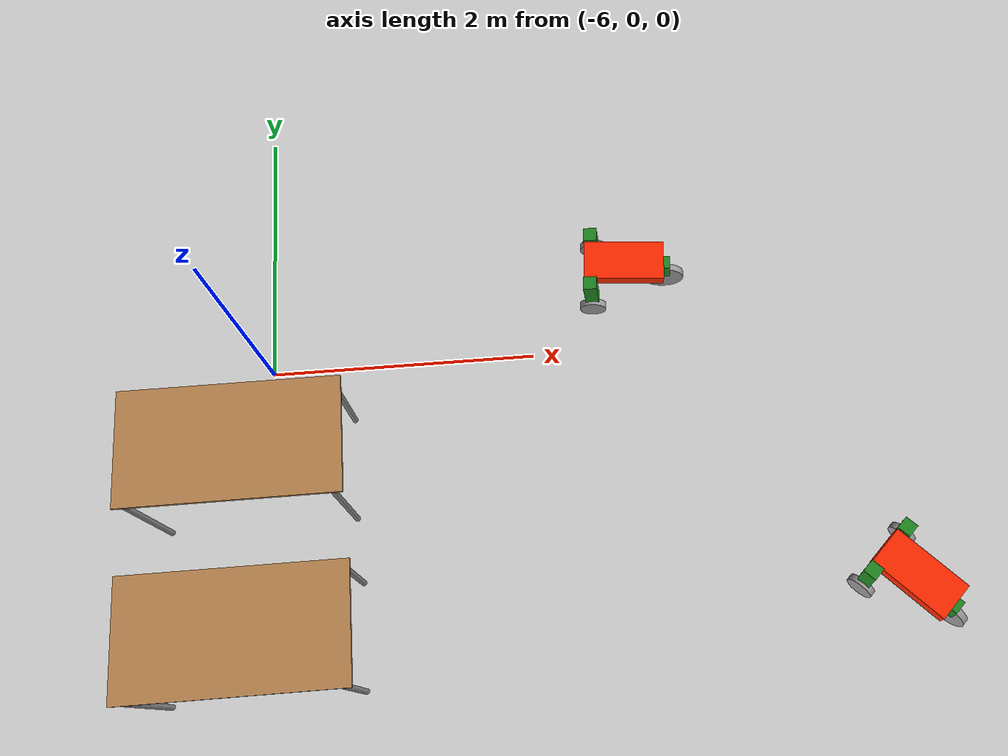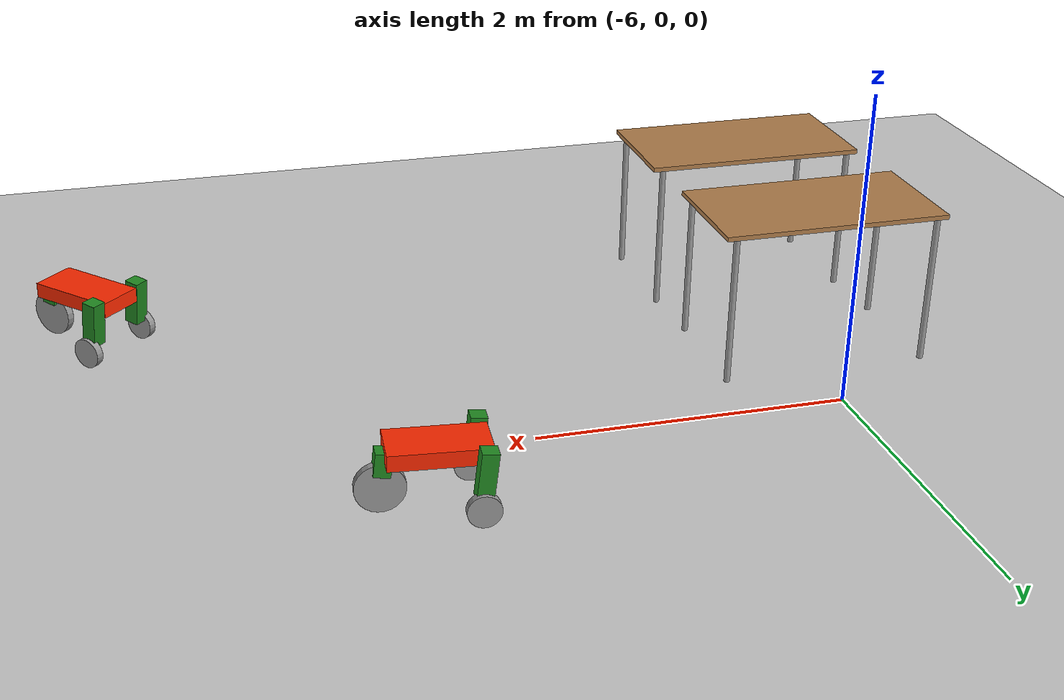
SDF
<sdf version="1.7">
 <world name="default">
  <model name="ground_plane">
   <static>1</static>
   <link name="link">
    <collision name="collision">
     <geometry><plane><normal>0 0 1</normal><size>100 100</size></plane></geometry>
     <surface>
      <contact><collide_bitmask>65535</collide_bitmask></contact>
      <friction><ode><mu>100</mu><mu2>50</mu2></ode></friction>
     </surface>
    </collision>
    <visual name="visual">
     <cast_shadows>0</cast_shadows>
     <geometry><plane><normal>0 0 1</normal><size>100 100</size></plane></geometry>
     <material>
      <script><uri>file://media/materials/scripts/gazebo.material</uri><name>Gazebo/Grey</name></script>
     </material>
    </visual>
   </link>
  </model>
  <model name="Three-Wheels-Robot_0">
   <link name="link_0">
    <inertial>
     <mass>1</mass>
     <inertia>
      <ixx>0.166667</ixx>
      <ixy>0</ixy>
      <ixz>0</ixz>
      <iyy>0.166667</iyy>
      <iyz>0</iyz>
      <izz>0.166667</izz>
     </inertia>
    </inertial>
    <pose>0.05 0 0.195 0 -0 0</pose>
    <visual name="visual">
     <pose>0 0 0 0 0.1 0</pose>
     <geometry><box><size>0.6 0.3 0.1</size></box></geometry>
     <material>
      <lighting>1</lighting>
      <script><uri>file://media/materials/scripts/gazebo.material</uri><name>Gazebo/Grey</name></script>
      <shader type="pixel"><normal_map>__default__</normal_map></shader>
      <ambient>1 0.16 0 1</ambient>
      <diffuse>0.7 0.7 0.7 1</diffuse>
      <specular>0.01 0.01 0.01 1</specular>
      <emissive>0 0 0 1</emissive>
     </material>
    </visual>
    <visual name="ModelPreview_0::link_0::visual_2">
     <pose>-0.25 -0.2 -0.05 0 -0 0</pose>
     <geometry><box><size>0.1 0.1 0.3</size></box></geometry>
     <material>
      <lighting>1</lighting>
      <script><uri>file://media/materials/scripts/gazebo.material</uri><name>Gazebo/Grey</name></script>
      <shader type="pixel"><normal_map>__default__</normal_map></shader>
      <ambient>0.13 0.54 0.13 1</ambient>
      <diffuse>0.7 0.7 0.7 1</diffuse>
      <specular>0.01 0.01 0.01 1</specular>
      <emissive>0 0 0 1</emissive>
     </material>
    </visual>
    <visual name="ModelPreview_0::link_0::visual_3">
     <pose>0.3 0 -0.1 0 -0 0</pose>
     <geometry><box><size>0.1 0.1 0.15</size></box></geometry>
     <material>
      <lighting>1</lighting>
      <script><uri>file://media/materials/scripts/gazebo.material</uri><name>Gazebo/Grey</name></script>
      <shader type="pixel"><normal_map>__default__</normal_map></shader>
      <ambient>0.13 0.54 0.13 1</ambient>
      <diffuse>0.7 0.7 0.7 1</diffuse>
      <specular>0.01 0.01 0.01 1</specular>
      <emissive>0 0 0 1</emissive>
     </material>
    </visual>
    <visual name="ModelPreview_0::link_0::visual_1">
     <pose>-0.25 0.2 -0.05 0 -0 0</pose>
     <geometry><box><size>0.1 0.1 0.3</size></box></geometry>
     <material>
      <lighting>1</lighting>
      <script><uri>file://media/materials/scripts/gazebo.material</uri><name>Gazebo/Grey</name></script>
      <shader type="pixel"><normal_map>__default__</normal_map></shader>
      <ambient>0.13 0.54 0.13 1</ambient>
      <diffuse>0.7 0.7 0.7 1</diffuse>
      <specular>0.01 0.01 0.01 1</specular>
      <emissive>0 0 0 1</emissive>
     </material>
    </visual>
    <collision name="collision">
     <pose>0 0 -0.1 0 -0 0</pose>
     <geometry><box><size>0.65 0.6 0.35</size></box></geometry>
     <surface>
      <friction>
       <ode><mu>1</mu><mu2>1</mu2><fdir1>0 0 0</fdir1><slip1>0</slip1><slip2>0</slip2></ode>
       <torsional>
        <coefficient>1</coefficient>
        <patch_radius>0</patch_radius>
        <surface_radius>0</surface_radius>
        <use_patch_radius>1</use_patch_radius>
        <ode><slip>0</slip></ode>
       </torsional>
      </friction>
      <bounce><restitution_coefficient>0</restitution_coefficient><threshold>1e+06</threshold></bounce>
      <contact>
       <collide_without_contact>0</collide_without_contact>
       <collide_without_contact_bitmask>1</collide_without_contact_bitmask>
       <collide_bitmask>1</collide_bitmask>
       <ode>
        <soft_cfm>0</soft_cfm>
        <soft_erp>0.2</soft_erp>
        <kp>1e+13</kp>
        <kd>1</kd>
        <max_vel>0.01</max_vel>
        <min_depth>0</min_depth>
       </ode>
       <bullet>
        <split_impulse>1</split_impulse>
        <split_impulse_penetration_threshold>-0.01</split_impulse_penetration_threshold>
        <soft_cfm>0</soft_cfm>
        <soft_erp>0.2</soft_erp>
        <kp>1e+13</kp>
        <kd>1</kd>
       </bullet>
      </contact>
     </surface>
    </collision>
   </link>
   <link name="link_2">
    <inertial>
     <mass>1</mass>
     <inertia><ixx>0.145833</ixx><ixy>0</ixy><ixz>0</ixz><iyy>0.145833</iyy><iyz>0</iyz><izz>0.125</izz></inertia>
    </inertial>
    <pose>-0.2 -0.25 -0.055 0 -0 0</pose>
    <visual name="visual">
     <pose>0 0 0 1.5707 -0 0</pose>
     <geometry><cylinder><radius>0.1</radius><length>0.05</length></cylinder></geometry>
     <material>
      <lighting>1</lighting>
      <script><uri>file://media/materials/scripts/gazebo.material</uri><name>Gazebo/Grey</name></script>
      <shader type="pixel"><normal_map>__default__</normal_map></shader>
      <ambient>0.3 0.3 0.3 1</ambient>
      <diffuse>0.7 0.7 0.7 1</diffuse>
      <specular>0.01 0.01 0.01 1</specular>
      <emissive>0 0 0 1</emissive>
     </material>
    </visual>
    <collision name="collision">
     <pose>0 0 0 1.5707 -0 0</pose>
     <geometry><cylinder><radius>0.1</radius><length>0.05</length></cylinder></geometry>
     <surface>
      <friction>
       <ode><mu>1</mu><mu2>1</mu2><fdir1>0 0 0</fdir1><slip1>0</slip1><slip2>0</slip2></ode>
       <torsional>
        <coefficient>1</coefficient>
        <patch_radius>0</patch_radius>
        <surface_radius>0</surface_radius>
        <use_patch_radius>1</use_patch_radius>
        <ode><slip>0</slip></ode>
       </torsional>
      </friction>
      <bounce><restitution_coefficient>0</restitution_coefficient><threshold>1e+06</threshold></bounce>
      <contact>
       <collide_without_contact>0</collide_without_contact>
       <collide_without_contact_bitmask>1</collide_without_contact_bitmask>
       <collide_bitmask>1</collide_bitmask>
       <ode>
        <soft_cfm>0</soft_cfm>
        <soft_erp>0.2</soft_erp>
        <kp>1e+13</kp>
        <kd>1</kd>
        <max_vel>0.01</max_vel>
        <min_depth>0</min_depth>
       </ode>
       <bullet>
        <split_impulse>1</split_impulse>
        <split_impulse_penetration_threshold>-0.01</split_impulse_penetration_threshold>
        <soft_cfm>0</soft_cfm>
        <soft_erp>0.2</soft_erp>
        <kp>1e+13</kp>
        <kd>1</kd>
       </bullet>
      </contact>
     </surface>
    </collision>
   </link>
   <link name="link_2_clone">
    <inertial>
     <mass>1</mass>
     <inertia><ixx>0.145833</ixx><ixy>0</ixy><ixz>0</ixz><iyy>0.145833</iyy><iyz>0</iyz><izz>0.125</izz></inertia>
    </inertial>
    <pose>-0.2 0.25 -0.055 0 -0 0</pose>
    <visual name="visual">
     <pose>0 0 0 1.5707 -0 0</pose>
     <geometry><cylinder><radius>0.1</radius><length>0.05</length></cylinder></geometry>
     <material>
      <lighting>1</lighting>
      <script><uri>file://media/materials/scripts/gazebo.material</uri><name>Gazebo/Grey</name></script>
      <shader type="pixel"><normal_map>__default__</normal_map></shader>
      <ambient>0.3 0.3 0.3 1</ambient>
      <diffuse>0.7 0.7 0.7 1</diffuse>
      <specular>0.01 0.01 0.01 1</specular>
      <emissive>0 0 0 1</emissive>
     </material>
    </visual>
    <collision name="collision">
     <pose>0 0 0 1.5707 -0 0</pose>
     <geometry><cylinder><radius>0.1</radius><length>0.05</length></cylinder></geometry>
     <surface>
      <friction>
       <ode><mu>1</mu><mu2>1</mu2><fdir1>0 0 0</fdir1><slip1>0</slip1><slip2>0</slip2></ode>
       <torsional>
        <coefficient>1</coefficient>
        <patch_radius>0</patch_radius>
        <surface_radius>0</surface_radius>
        <use_patch_radius>1</use_patch_radius>
        <ode><slip>0</slip></ode>
       </torsional>
      </friction>
      <bounce><restitution_coefficient>0</restitution_coefficient><threshold>1e+06</threshold></bounce>
      <contact>
       <collide_without_contact>0</collide_without_contact>
       <collide_without_contact_bitmask>1</collide_without_contact_bitmask>
       <collide_bitmask>1</collide_bitmask>
       <ode>
        <soft_cfm>0</soft_cfm>
        <soft_erp>0.2</soft_erp>
        <kp>1e+13</kp>
        <kd>1</kd>
        <max_vel>0.01</max_vel>
        <min_depth>0</min_depth>
       </ode>
       <bullet>
        <split_impulse>1</split_impulse>
        <split_impulse_penetration_threshold>-0.01</split_impulse_penetration_threshold>
        <soft_cfm>0</soft_cfm>
        <soft_erp>0.2</soft_erp>
        <kp>1e+13</kp>
        <kd>1</kd>
       </bullet>
      </contact>
     </surface>
    </collision>
   </link>
   <link name="link_2_clone_0">
    <inertial>
     <mass>1</mass>
     <inertia><ixx>0.145833</ixx><ixy>0</ixy><ixz>0</ixz><iyy>0.145833</iyy><iyz>0</iyz><izz>0.125</izz></inertia>
    </inertial>
    <pose>0.35 -0 -0.085 0 -0 0</pose>
    <visual name="visual">
     <pose>0 0 0.02 1.5707 -0 0</pose>
     <geometry><cylinder><radius>0.15</radius><length>0.05</length></cylinder></geometry>
     <material>
      <lighting>1</lighting>
      <script><uri>file://media/materials/scripts/gazebo.material</uri><name>Gazebo/Grey</name></script>
      <shader type="pixel"><normal_map>__default__</normal_map></shader>
      <ambient>0.3 0.3 0.3 1</ambient>
      <diffuse>0.7 0.7 0.7 1</diffuse>
      <specular>0.01 0.01 0.01 1</specular>
      <emissive>0 0 0 1</emissive>
     </material>
    </visual>
    <collision name="collision">
     <pose>0 0 0.02 1.5707 -0 0</pose>
     <geometry><cylinder><radius>0.15</radius><length>0.05</length></cylinder></geometry>
     <surface>
      <friction>
       <ode><mu>1</mu><mu2>1</mu2><fdir1>0 0 0</fdir1><slip1>0</slip1><slip2>0</slip2></ode>
       <torsional>
        <coefficient>1</coefficient>
        <patch_radius>0</patch_radius>
        <surface_radius>0</surface_radius>
        <use_patch_radius>1</use_patch_radius>
        <ode><slip>0</slip></ode>
       </torsional>
      </friction>
      <bounce><restitution_coefficient>0</restitution_coefficient><threshold>1e+06</threshold></bounce>
      <contact>
       <collide_without_contact>0</collide_without_contact>
       <collide_without_contact_bitmask>1</collide_without_contact_bitmask>
       <collide_bitmask>1</collide_bitmask>
       <ode>
        <soft_cfm>0</soft_cfm>
        <soft_erp>0.2</soft_erp>
        <kp>1e+13</kp>
        <kd>1</kd>
        <max_vel>0.01</max_vel>
        <min_depth>0</min_depth>
       </ode>
       <bullet>
        <split_impulse>1</split_impulse>
        <split_impulse_penetration_threshold>-0.01</split_impulse_penetration_threshold>
        <soft_cfm>0</soft_cfm>
        <soft_erp>0.2</soft_erp>
        <kp>1e+13</kp>
        <kd>1</kd>
       </bullet>
      </contact>
     </surface>
    </collision>
   </link>
   <joint name="link_0_JOINT_0" type="revolute">
    <parent>link_0</parent>
    <child>link_2</child>
    <axis>
     <xyz>0 1 0</xyz>
     <limit>
      <lower>-1.79769e+308</lower>
      <upper>1.79769e+308</upper>
      <effort>-1</effort>
      <velocity>-1</velocity>
     </limit>
     <dynamics>
      <spring_reference>0</spring_reference>
      <spring_stiffness>0</spring_stiffness>
      <damping>0</damping>
      <friction>0</friction>
     </dynamics>
    </axis>
    <physics>
     <ode><limit><cfm>0</cfm><erp>0.2</erp></limit><suspension><cfm>0</cfm><erp>0.2</erp></suspension></ode>
    </physics>
   </joint>
   <joint name="link_0_JOINT_1" type="revolute">
    <parent>link_0</parent>
    <child>link_2_clone</child>
    <axis>
     <xyz>0 -1 0</xyz>
     <limit>
      <lower>-1.79769e+308</lower>
      <upper>1.79769e+308</upper>
      <effort>-1</effort>
      <velocity>-1</velocity>
     </limit>
     <dynamics>
      <spring_reference>0</spring_reference>
      <spring_stiffness>0</spring_stiffness>
      <damping>0</damping>
      <friction>0</friction>
     </dynamics>
    </axis>
    <physics>
     <ode><limit><cfm>0</cfm><erp>0.2</erp></limit><suspension><cfm>0</cfm><erp>0.2</erp></suspension></ode>
    </physics>
   </joint>
   <joint name="link_0_JOINT_2" type="revolute">
    <parent>link_0</parent>
    <child>link_2_clone_0</child>
    <axis>
     <xyz>0 1 0</xyz>
     <limit>
      <lower>-1.79769e+308</lower>
      <upper>1.79769e+308</upper>
      <effort>-1</effort>
      <velocity>-1</velocity>
     </limit>
     <dynamics>
      <spring_reference>0</spring_reference>
      <spring_stiffness>0</spring_stiffness>
      <damping>0</damping>
      <friction>0</friction>
     </dynamics>
    </axis>
    <physics>
     <ode><limit><cfm>0</cfm><erp>0.2</erp></limit><suspension><cfm>0</cfm><erp>0.2</erp></suspension></ode>
    </physics>
   </joint>
   <static>0</static>
   <pose>-3.29506 0.570136 0.176429 5e-06 -0.108986 -0.085797</pose>
  </model>
  <model name="table">
   <static>1</static>
   <link name="link">
    <collision name="surface">
     <pose>0 0 1 0 -0 0</pose>
     <geometry><box><size>1.5 0.8 0.03</size></box></geometry>
     <surface><friction><ode><mu>0.6</mu><mu2>0.6</mu2></ode></friction></surface>
    </collision>
    <visual name="visual1">
     <pose>0 0 1 0 -0 0</pose>
     <geometry><box><size>1.5 0.8 0.03</size></box></geometry>
     <material>
      <script><uri>file://media/materials/scripts/gazebo.material</uri><name>Gazebo/Wood</name></script>
     </material>
    </visual>
    <collision name="coll_front_left_leg1">
     <pose>0.68 0.38 0.5 0 -0 0</pose>
     <geometry><cylinder><radius>0.02</radius><length>1</length></cylinder></geometry>
    </collision>
    <visual name="front_left_leg1">
     <pose>0.68 0.38 0.5 0 -0 0</pose>
     <geometry><cylinder><radius>0.02</radius><length>1</length></cylinder></geometry>
     <material>
      <script><uri>file://media/materials/scripts/gazebo.material</uri><name>Gazebo/Grey</name></script>
     </material>
    </visual>
    <collision name="coll_front_right_leg1">
     <pose>0.68 -0.38 0.5 0 -0 0</pose>
     <geometry><cylinder><radius>0.02</radius><length>1</length></cylinder></geometry>
    </collision>
    <visual name="front_right_leg1">
     <pose>0.68 -0.38 0.5 0 -0 0</pose>
     <geometry><cylinder><radius>0.02</radius><length>1</length></cylinder></geometry>
     <material>
      <script><uri>file://media/materials/scripts/gazebo.material</uri><name>Gazebo/Grey</name></script>
     </material>
    </visual>
    <collision name="coll_back_right_leg1">
     <pose>-0.68 -0.38 0.5 0 -0 0</pose>
     <geometry><cylinder><radius>0.02</radius><length>1</length></cylinder></geometry>
    </collision>
    <visual name="back_right_leg1">
     <pose>-0.68 -0.38 0.5 0 -0 0</pose>
     <geometry><cylinder><radius>0.02</radius><length>1</length></cylinder></geometry>
     <material>
      <script><uri>file://media/materials/scripts/gazebo.material</uri><name>Gazebo/Grey</name></script>
     </material>
    </visual>
    <collision name="coll_back_left_leg1">
     <pose>-0.68 0.38 0.5 0 -0 0</pose>
     <geometry><cylinder><radius>0.02</radius><length>1</length></cylinder></geometry>
    </collision>
    <visual name="back_left_leg1">
     <pose>-0.68 0.38 0.5 0 -0 0</pose>
     <geometry><cylinder><radius>0.02</radius><length>1</length></cylinder></geometry>
     <material>
      <script><uri>file://media/materials/scripts/gazebo.material</uri><name>Gazebo/Grey</name></script>
     </material>
    </visual>
   </link>
   <pose>-6.03425 -2.02721 0 0 -0 0</pose>
  </model>
  <model name="table_0">
   <static>1</static>
   <link name="link">
    <collision name="surface">
     <pose>0 0 1 0 -0 0</pose>
     <geometry><box><size>1.5 0.8 0.03</size></box></geometry>
     <surface><friction><ode><mu>0.6</mu><mu2>0.6</mu2></ode></friction></surface>
    </collision>
    <visual name="visual1">
     <pose>0 0 1 0 -0 0</pose>
     <geometry><box><size>1.5 0.8 0.03</size></box></geometry>
     <material>
      <script><uri>file://media/materials/scripts/gazebo.material</uri><name>Gazebo/Wood</name></script>
     </material>
    </visual>
    <collision name="coll_front_left_leg2">
     <pose>0.68 0.38 0.5 0 -0 0</pose>
     <geometry><cylinder><radius>0.02</radius><length>1</length></cylinder></geometry>
    </collision>
    <visual name="front_left_leg2">
     <pose>0.68 0.38 0.5 0 -0 0</pose>
     <geometry><cylinder><radius>0.02</radius><length>1</length></cylinder></geometry>
     <material>
      <script><uri>file://media/materials/scripts/gazebo.material</uri><name>Gazebo/Grey</name></script>
     </material>
    </visual>
    <collision name="coll_front_right_leg2">
     <pose>0.68 -0.38 0.5 0 -0 0</pose>
     <geometry><cylinder><radius>0.02</radius><length>1</length></cylinder></geometry>
    </collision>
    <visual name="front_right_leg2">
     <pose>0.68 -0.38 0.5 0 -0 0</pose>
     <geometry><cylinder><radius>0.02</radius><length>1</length></cylinder></geometry>
     <material>
      <script><uri>file://media/materials/scripts/gazebo.material</uri><name>Gazebo/Grey</name></script>
     </material>
    </visual>
    <collision name="coll_back_right_leg2">
     <pose>-0.68 -0.38 0.5 0 -0 0</pose>
     <geometry><cylinder><radius>0.02</radius><length>1</length></cylinder></geometry>
    </collision>
    <visual name="back_right_leg2">
     <pose>-0.68 -0.38 0.5 0 -0 0</pose>
     <geometry><cylinder><radius>0.02</radius><length>1</length></cylinder></geometry>
     <material>
      <script><uri>file://media/materials/scripts/gazebo.material</uri><name>Gazebo/Grey</name></script>
     </material>
    </visual>
    <collision name="coll_back_left_leg2">
     <pose>-0.68 0.38 0.5 0 -0 0</pose>
     <geometry><cylinder><radius>0.02</radius><length>1</length></cylinder></geometry>
    </collision>
    <visual name="back_left_leg2">
     <pose>-0.68 0.38 0.5 0 -0 0</pose>
     <geometry><cylinder><radius>0.02</radius><length>1</length></cylinder></geometry>
     <material>
      <script><uri>file://media/materials/scripts/gazebo.material</uri><name>Gazebo/Grey</name></script>
     </material>
    </visual>
   </link>
   <pose>-6.06932 -0.79014 0 0 -0 0</pose>
  </model>
  <model name="Three-Wheels-Robot_1">
   <link name="link_0">
    <inertial>
     <mass>1</mass>
     <inertia>
      <ixx>0.166667</ixx>
      <ixy>0</ixy>
      <ixz>0</ixz>
      <iyy>0.166667</iyy>
      <iyz>0</iyz>
      <izz>0.166667</izz>
     </inertia>
    </inertial>
    <pose>0.05 -0 0.195 0 -0 0</pose>
    <visual name="ModelPreview_0::link_0::visual_1">
     <pose>-0.25 0.2 -0.05 0 -0 0</pose>
     <geometry><box><size>0.1 0.1 0.3</size></box></geometry>
     <material>
      <lighting>1</lighting>
      <script><uri>file://media/materials/scripts/gazebo.material</uri><name>Gazebo/Grey</name></script>
      <shader type="pixel"><normal_map>__default__</normal_map></shader>
      <ambient>0.13 0.54 0.13 1</ambient>
      <diffuse>0.7 0.7 0.7 1</diffuse>
      <specular>0.01 0.01 0.01 1</specular>
      <emissive>0 0 0 1</emissive>
     </material>
    </visual>
    <visual name="ModelPreview_0::link_0::visual_3">
     <pose>0.3 0 -0.1 0 -0 0</pose>
     <geometry><box><size>0.1 0.1 0.15</size></box></geometry>
     <material>
      <lighting>1</lighting>
      <script><uri>file://media/materials/scripts/gazebo.material</uri><name>Gazebo/Grey</name></script>
      <shader type="pixel"><normal_map>__default__</normal_map></shader>
      <ambient>0.13 0.54 0.13 1</ambient>
      <diffuse>0.7 0.7 0.7 1</diffuse>
      <specular>0.01 0.01 0.01 1</specular>
      <emissive>0 0 0 1</emissive>
     </material>
    </visual>
    <visual name="visual">
     <pose>0 0 0 0 0.1 0</pose>
     <geometry><box><size>0.6 0.3 0.1</size></box></geometry>
     <material>
      <lighting>1</lighting>
      <script><uri>file://media/materials/scripts/gazebo.material</uri><name>Gazebo/Grey</name></script>
      <shader type="pixel"><normal_map>__default__</normal_map></shader>
      <ambient>1 0.16 0 1</ambient>
      <diffuse>0.7 0.7 0.7 1</diffuse>
      <specular>0.01 0.01 0.01 1</specular>
      <emissive>0 0 0 1</emissive>
     </material>
    </visual>
    <visual name="ModelPreview_0::link_0::visual_2">
     <pose>-0.25 -0.2 -0.05 0 -0 0</pose>
     <geometry><box><size>0.1 0.1 0.3</size></box></geometry>
     <material>
      <lighting>1</lighting>
      <script><uri>file://media/materials/scripts/gazebo.material</uri><name>Gazebo/Grey</name></script>
      <shader type="pixel"><normal_map>__default__</normal_map></shader>
      <ambient>0.13 0.54 0.13 1</ambient>
      <diffuse>0.7 0.7 0.7 1</diffuse>
      <specular>0.01 0.01 0.01 1</specular>
      <emissive>0 0 0 1</emissive>
     </material>
    </visual>
    <collision name="collision">
     <pose>0 0 -0.1 0 -0 0</pose>
     <geometry><box><size>0.65 0.6 0.35</size></box></geometry>
     <surface>
      <friction>
       <ode><mu>1</mu><mu2>1</mu2><fdir1>0 0 0</fdir1><slip1>0</slip1><slip2>0</slip2></ode>
       <torsional>
        <coefficient>1</coefficient>
        <patch_radius>0</patch_radius>
        <surface_radius>0</surface_radius>
        <use_patch_radius>1</use_patch_radius>
        <ode><slip>0</slip></ode>
       </torsional>
      </friction>
      <bounce><restitution_coefficient>0</restitution_coefficient><threshold>1e+06</threshold></bounce>
      <contact>
       <collide_without_contact>0</collide_without_contact>
       <collide_without_contact_bitmask>1</collide_without_contact_bitmask>
       <collide_bitmask>1</collide_bitmask>
       <ode>
        <soft_cfm>0</soft_cfm>
        <soft_erp>0.2</soft_erp>
        <kp>1e+13</kp>
        <kd>1</kd>
        <max_vel>0.01</max_vel>
        <min_depth>0</min_depth>
       </ode>
       <bullet>
        <split_impulse>1</split_impulse>
        <split_impulse_penetration_threshold>-0.01</split_impulse_penetration_threshold>
        <soft_cfm>0</soft_cfm>
        <soft_erp>0.2</soft_erp>
        <kp>1e+13</kp>
        <kd>1</kd>
       </bullet>
      </contact>
     </surface>
    </collision>
   </link>
   <link name="link_2">
    <inertial>
     <mass>1</mass>
     <inertia><ixx>0.145833</ixx><ixy>0</ixy><ixz>0</ixz><iyy>0.145833</iyy><iyz>0</iyz><izz>0.125</izz></inertia>
    </inertial>
    <pose>-0.2 -0.25 -0.055 0 -0 0</pose>
    <visual name="visual">
     <pose>0 0 0 1.5707 -0 0</pose>
     <geometry><cylinder><radius>0.1</radius><length>0.05</length></cylinder></geometry>
     <material>
      <lighting>1</lighting>
      <script><uri>file://media/materials/scripts/gazebo.material</uri><name>Gazebo/Grey</name></script>
      <shader type="pixel"><normal_map>__default__</normal_map></shader>
      <ambient>0.3 0.3 0.3 1</ambient>
      <diffuse>0.7 0.7 0.7 1</diffuse>
      <specular>0.01 0.01 0.01 1</specular>
      <emissive>0 0 0 1</emissive>
     </material>
    </visual>
    <collision name="collision">
     <pose>0 0 0 1.5707 -0 0</pose>
     <geometry><cylinder><radius>0.1</radius><length>0.05</length></cylinder></geometry>
     <surface>
      <friction>
       <ode><mu>1</mu><mu2>1</mu2><fdir1>0 0 0</fdir1><slip1>0</slip1><slip2>0</slip2></ode>
       <torsional>
        <coefficient>1</coefficient>
        <patch_radius>0</patch_radius>
        <surface_radius>0</surface_radius>
        <use_patch_radius>1</use_patch_radius>
        <ode><slip>0</slip></ode>
       </torsional>
      </friction>
      <bounce><restitution_coefficient>0</restitution_coefficient><threshold>1e+06</threshold></bounce>
      <contact>
       <collide_without_contact>0</collide_without_contact>
       <collide_without_contact_bitmask>1</collide_without_contact_bitmask>
       <collide_bitmask>1</collide_bitmask>
       <ode>
        <soft_cfm>0</soft_cfm>
        <soft_erp>0.2</soft_erp>
        <kp>1e+13</kp>
        <kd>1</kd>
        <max_vel>0.01</max_vel>
        <min_depth>0</min_depth>
       </ode>
       <bullet>
        <split_impulse>1</split_impulse>
        <split_impulse_penetration_threshold>-0.01</split_impulse_penetration_threshold>
        <soft_cfm>0</soft_cfm>
        <soft_erp>0.2</soft_erp>
        <kp>1e+13</kp>
        <kd>1</kd>
       </bullet>
      </contact>
     </surface>
    </collision>
   </link>
   <link name="link_2_clone">
    <inertial>
     <mass>1</mass>
     <inertia><ixx>0.145833</ixx><ixy>0</ixy><ixz>0</ixz><iyy>0.145833</iyy><iyz>0</iyz><izz>0.125</izz></inertia>
    </inertial>
    <pose>-0.2 0.25 -0.055 0 -0 0</pose>
    <visual name="visual">
     <pose>0 0 0 1.5707 -0 0</pose>
     <geometry><cylinder><radius>0.1</radius><length>0.05</length></cylinder></geometry>
     <material>
      <lighting>1</lighting>
      <script><uri>file://media/materials/scripts/gazebo.material</uri><name>Gazebo/Grey</name></script>
      <shader type="pixel"><normal_map>__default__</normal_map></shader>
      <ambient>0.3 0.3 0.3 1</ambient>
      <diffuse>0.7 0.7 0.7 1</diffuse>
      <specular>0.01 0.01 0.01 1</specular>
      <emissive>0 0 0 1</emissive>
     </material>
    </visual>
    <collision name="collision">
     <pose>0 0 0 1.5707 -0 0</pose>
     <geometry><cylinder><radius>0.1</radius><length>0.05</length></cylinder></geometry>
     <surface>
      <friction>
       <ode><mu>1</mu><mu2>1</mu2><fdir1>0 0 0</fdir1><slip1>0</slip1><slip2>0</slip2></ode>
       <torsional>
        <coefficient>1</coefficient>
        <patch_radius>0</patch_radius>
        <surface_radius>0</surface_radius>
        <use_patch_radius>1</use_patch_radius>
        <ode><slip>0</slip></ode>
       </torsional>
      </friction>
      <bounce><restitution_coefficient>0</restitution_coefficient><threshold>1e+06</threshold></bounce>
      <contact>
       <collide_without_contact>0</collide_without_contact>
       <collide_without_contact_bitmask>1</collide_without_contact_bitmask>
       <collide_bitmask>1</collide_bitmask>
       <ode>
        <soft_cfm>0</soft_cfm>
        <soft_erp>0.2</soft_erp>
        <kp>1e+13</kp>
        <kd>1</kd>
        <max_vel>0.01</max_vel>
        <min_depth>0</min_depth>
       </ode>
       <bullet>
        <split_impulse>1</split_impulse>
        <split_impulse_penetration_threshold>-0.01</split_impulse_penetration_threshold>
        <soft_cfm>0</soft_cfm>
        <soft_erp>0.2</soft_erp>
        <kp>1e+13</kp>
        <kd>1</kd>
       </bullet>
      </contact>
     </surface>
    </collision>
   </link>
   <link name="link_2_clone_0">
    <inertial>
     <mass>1</mass>
     <inertia><ixx>0.145833</ixx><ixy>0</ixy><ixz>0</ixz><iyy>0.145833</iyy><iyz>0</iyz><izz>0.125</izz></inertia>
    </inertial>
    <pose>0.35 -0 -0.085 0 -0 0</pose>
    <visual name="visual">
     <pose>0 0 0.02 1.5707 -0 0</pose>
     <geometry><cylinder><radius>0.15</radius><length>0.05</length></cylinder></geometry>
     <material>
      <lighting>1</lighting>
      <script><uri>file://media/materials/scripts/gazebo.material</uri><name>Gazebo/Grey</name></script>
      <shader type="pixel"><normal_map>__default__</normal_map></shader>
      <ambient>0.3 0.3 0.3 1</ambient>
      <diffuse>0.7 0.7 0.7 1</diffuse>
      <specular>0.01 0.01 0.01 1</specular>
      <emissive>0 0 0 1</emissive>
     </material>
    </visual>
    <collision name="collision">
     <pose>0 0 0.02 1.5707 -0 0</pose>
     <geometry><cylinder><radius>0.15</radius><length>0.05</length></cylinder></geometry>
     <surface>
      <friction>
       <ode><mu>1</mu><mu2>1</mu2><fdir1>0 0 0</fdir1><slip1>0</slip1><slip2>0</slip2></ode>
       <torsional>
        <coefficient>1</coefficient>
        <patch_radius>0</patch_radius>
        <surface_radius>0</surface_radius>
        <use_patch_radius>1</use_patch_radius>
        <ode><slip>0</slip></ode>
       </torsional>
      </friction>
      <bounce><restitution_coefficient>0</restitution_coefficient><threshold>1e+06</threshold></bounce>
      <contact>
       <collide_without_contact>0</collide_without_contact>
       <collide_without_contact_bitmask>1</collide_without_contact_bitmask>
       <collide_bitmask>1</collide_bitmask>
       <ode>
        <soft_cfm>0</soft_cfm>
        <soft_erp>0.2</soft_erp>
        <kp>1e+13</kp>
        <kd>1</kd>
        <max_vel>0.01</max_vel>
        <min_depth>0</min_depth>
       </ode>
       <bullet>
        <split_impulse>1</split_impulse>
        <split_impulse_penetration_threshold>-0.01</split_impulse_penetration_threshold>
        <soft_cfm>0</soft_cfm>
        <soft_erp>0.2</soft_erp>
        <kp>1e+13</kp>
        <kd>1</kd>
       </bullet>
      </contact>
     </surface>
    </collision>
   </link>
   <joint name="link_0_JOINT_0" type="revolute">
    <parent>link_0</parent>
    <child>link_2</child>
    <axis>
     <xyz>0 1 0</xyz>
     <limit>
      <lower>-1.79769e+308</lower>
      <upper>1.79769e+308</upper>
      <effort>-1</effort>
      <velocity>-1</velocity>
     </limit>
     <dynamics>
      <spring_reference>0</spring_reference>
      <spring_stiffness>0</spring_stiffness>
      <damping>0</damping>
      <friction>0</friction>
     </dynamics>
    </axis>
    <physics>
     <ode><limit><cfm>0</cfm><erp>0.2</erp></limit><suspension><cfm>0</cfm><erp>0.2</erp></suspension></ode>
    </physics>
   </joint>
   <joint name="link_0_JOINT_1" type="revolute">
    <parent>link_0</parent>
    <child>link_2_clone</child>
    <axis>
     <xyz>0 -1 0</xyz>
     <limit>
      <lower>-1.79769e+308</lower>
      <upper>1.79769e+308</upper>
      <effort>-1</effort>
      <velocity>-1</velocity>
     </limit>
     <dynamics>
      <spring_reference>0</spring_reference>
      <spring_stiffness>0</spring_stiffness>
      <damping>0</damping>
      <friction>0</friction>
     </dynamics>
    </axis>
    <physics>
     <ode><limit><cfm>0</cfm><erp>0.2</erp></limit><suspension><cfm>0</cfm><erp>0.2</erp></suspension></ode>
    </physics>
   </joint>
   <joint name="link_0_JOINT_2" type="revolute">
    <parent>link_0</parent>
    <child>link_2_clone_0</child>
    <axis>
     <xyz>0 1 0</xyz>
     <limit>
      <lower>-1.79769e+308</lower>
      <upper>1.79769e+308</upper>
      <effort>-1</effort>
      <velocity>-1</velocity>
     </limit>
     <dynamics>
      <spring_reference>0</spring_reference>
      <spring_stiffness>0</spring_stiffness>
      <damping>0</damping>
      <friction>0</friction>
     </dynamics>
    </axis>
    <physics>
     <ode><limit><cfm>0</cfm><erp>0.2</erp></limit><suspension><cfm>0</cfm><erp>0.2</erp></suspension></ode>
    </physics>
   </joint>
   <static>0</static>
   <pose>-1.48026 -1.92547 0.176462 -8e-06 -0.109159 -0.800343</pose>
  </model>
 </world>
</sdf>
